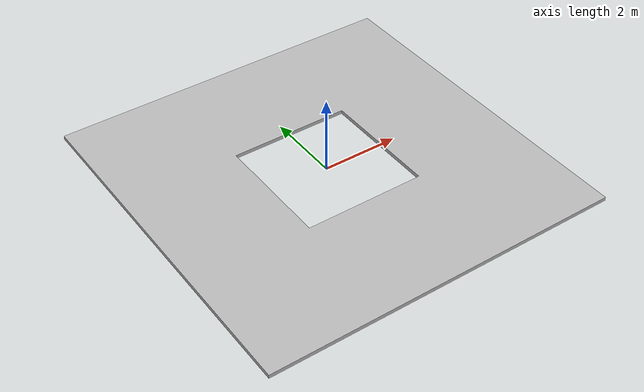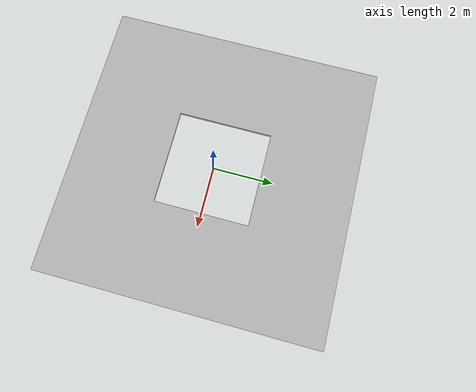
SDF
<?xml version="1.0"?>
<sdf version="1.7">
	<model name="floor_exterior">
		<static>true</static>
		<link name="floor_exterior_link">
			<collision>
				<geometry>
					<mesh>
						<uri>model://meshes/floor_iisc_exterior.dae</uri>
					</mesh>
				</geometry>
			</collision>
			<visual name="floor_exterior_vis">
				<geometry>
					<mesh>
						<uri>model://meshes/floor_iisc_exterior.dae</uri>
					</mesh>
				</geometry>
			</visual>
		</link>
	</model>
</sdf>
